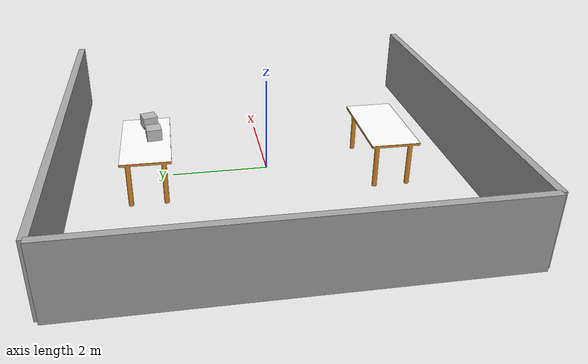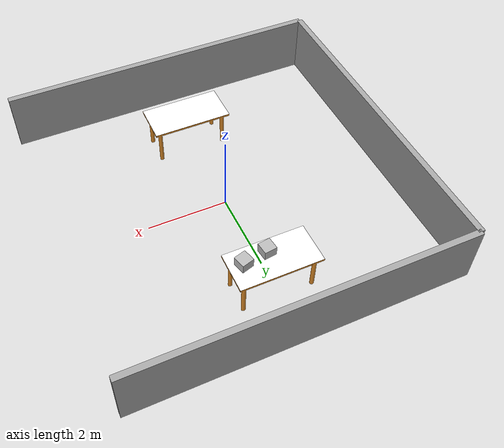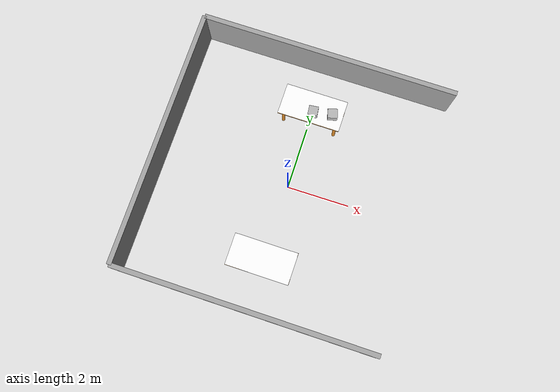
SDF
<sdf version="1.9">
 <world name="agentic_ai_demo_two_tables_u">
  <physics type="ode"><max_step_size>0.02</max_step_size><real_time_factor>1.0</real_time_factor></physics>
  <plugin name="gz::sim::systems::Physics" filename="libgz-sim-physics-system.so"/>
  <plugin name="gz::sim::systems::UserCommands" filename="libgz-sim-user-commands-system.so"/>
  <plugin name="gz::sim::systems::SceneBroadcaster" filename="libgz-sim-scene-broadcaster-system.so"/>
  <plugin name="gz::sim::systems::Sensors" filename="libgz-sim-sensors-system.so">
   <render_engine>ogre2</render_engine>
  </plugin>
  <plugin name="gz::sim::systems::Imu" filename="libgz-sim-imu-system.so"/>
  <plugin name="gz::sim::systems::NavSat" filename="libgz-sim-navsat-system.so"/>
  <plugin name="gz::sim::systems::Contact" filename="libgz-sim-contact-system.so"/>
  <scene><ambient>1 1 1</ambient><grid>false</grid></scene>
  <light name="sun" type="directional">
   <pose>0 0 10 0 0 0</pose>
   <diffuse>0.8 0.8 0.8 1</diffuse>
   <specular>0.8 0.8 0.8 1</specular>
   <direction>0 0 -1</direction>
  </light>
  <include>
   <uri>model://work_table</uri>
   <name>work_table_north</name>
   <pose>0 2.5 -0.18 0 0 3.1416</pose>
  </include>
  <include><uri>model://work_table</uri><name>work_table_south</name><pose>0 -2.5 -0.18 0 0 0</pose></include>
  <include>
   <uri>model://cube_logo_robonik</uri>
   <name>north_table_cube_logo</name>
   <pose>0.06 2.33 0.96 0 0 0.12</pose>
  </include>
  <include>
   <uri>model://cube_logotipo_robotnik</uri>
   <name>north_table_cube_logotipo</name>
   <pose>0.66 2.43 0.96 0 0 0.28</pose>
  </include>
  <model name="low_wall_west">
   <static>true</static>
   <pose>-4.1 0 0.75 0 0 0</pose>
   <link name="link">
    <collision name="collision"><geometry><box><size>0.15 8.2 1.5</size></box></geometry></collision>
    <visual name="visual">
     <geometry><box><size>0.15 8.2 1.5</size></box></geometry>
     <material><ambient>0.55 0.55 0.55 1</ambient><diffuse>0.65 0.65 0.65 1</diffuse></material>
    </visual>
   </link>
  </model>
  <model name="low_wall_north">
   <static>true</static>
   <pose>0 4.1 0.75 0 0 0</pose>
   <link name="link">
    <collision name="collision"><geometry><box><size>8.2 0.15 1.5</size></box></geometry></collision>
    <visual name="visual">
     <geometry><box><size>8.2 0.15 1.5</size></box></geometry>
     <material><ambient>0.55 0.55 0.55 1</ambient><diffuse>0.65 0.65 0.65 1</diffuse></material>
    </visual>
   </link>
  </model>
  <model name="low_wall_south">
   <static>true</static>
   <pose>0 -4.1 0.75 0 0 0</pose>
   <link name="link">
    <collision name="collision"><geometry><box><size>8.2 0.15 1.5</size></box></geometry></collision>
    <visual name="visual">
     <geometry><box><size>8.2 0.15 1.5</size></box></geometry>
     <material><ambient>0.55 0.55 0.55 1</ambient><diffuse>0.65 0.65 0.65 1</diffuse></material>
    </visual>
   </link>
  </model>
 </world>
</sdf>

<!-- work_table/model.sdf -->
<sdf version="1.9">
  <model name="work_table">
    <static>true</static>
    <link name="link">
      <visual name="visual">
        <pose>0 0 1.0 0 0 0</pose>
        <geometry>
          <mesh>
            <uri>model://floor/meshes/mesa.stl</uri>
          </mesh>
        </geometry>
        <material>
          <ambient>0.909804 0.572549 0.164706 1</ambient>
          <diffuse>0.909804 0.572549 0.164706 1</diffuse>
        </material>
      </visual>
      <visual name="wood_top_visual">
        <pose>0 0 1.051 0 0 0</pose>
        <geometry>
          <box>
            <size>2.0 1.0 0.003</size>
          </box>
        </geometry>
        <material>
          <diffuse>1 1 1 1</diffuse>
          <specular>0.08 0.08 0.08 1</specular>
          <pbr>
            <metal>
              <albedo_map>model://work_table/materials/textures/wood_table_001_diff_1k.jpg</albedo_map>
              <metalness>0.0</metalness>
              <roughness>0.65</roughness>
            </metal>
          </pbr>
        </material>
      </visual>
      <collision name="collision">
        <pose>0 0 1.0 0 0 0</pose>
        <geometry>
          <mesh>
            <uri>model://floor/meshes/mesa.stl</uri>
          </mesh>
        </geometry>
      </collision>
    </link>
  </model>
</sdf>

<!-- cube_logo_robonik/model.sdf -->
<sdf version="1.6">
  <model name="cube_logo_robonik">
    <pose>0 0 0.15 0 0 0</pose>
    <link name="link">
      <inertial>
        <mass>2</mass>
        <inertia>
          <ixx>0.041666667</ixx>
          <ixy>0</ixy>
          <ixz>0</ixz>
          <iyy>0.056666667</iyy>
          <iyz>0</iyz>
          <izz>0.068333333</izz>
        </inertia>
      </inertial>
      <collision name="collision">
        <geometry>
          <box>
            <size>0.3 0.3 0.3</size>
          </box>
        </geometry>
        <surface>
          <friction>
            <ode>
              <mu>1.0</mu>
              <mu2>1.0</mu2>
            </ode>
          </friction>
          <contact>
            <ode>
              <kp>10000000.0</kp>
              <kd>1.0</kd>
              <min_depth>0.001</min_depth>
              <max_vel>0.1</max_vel>
            </ode>
          </contact>
        </surface>
      </collision>
      <visual name="visual">
        <pose>0 0 0 0 0 0</pose>
        <geometry>
          <mesh>
            <uri>model://cube_logo_robonik/cube_logo_robotnik.dae</uri>
            <scale>0.15 0.15 0.1898734177</scale>
          </mesh>
        </geometry>
      </visual>
    </link>
  </model>
</sdf>

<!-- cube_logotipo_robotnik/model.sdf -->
<sdf version="1.6">
  <model name="cube_logotipo_robotnik">
    <pose>0 0 0.15 0 0 0</pose>
    <link name="link">
      <inertial>
        <mass>2</mass>
        <inertia>
          <ixx>0.041666667</ixx>
          <ixy>0</ixy>
          <ixz>0</ixz>
          <iyy>0.056666667</iyy>
          <iyz>0</iyz>
          <izz>0.068333333</izz>
        </inertia>
      </inertial>
      <collision name="collision">
        <geometry>
          <box>
            <size>0.3 0.3 0.3</size>
          </box>
        </geometry>
        <surface>
          <friction>
            <ode>
              <mu>1.0</mu>
              <mu2>1.0</mu2>
            </ode>
          </friction>
          <contact>
            <ode>
              <kp>10000000.0</kp>
              <kd>1.0</kd>
              <min_depth>0.001</min_depth>
              <max_vel>0.1</max_vel>
            </ode>
          </contact>
        </surface>
      </collision>
      <visual name="visual">
        <pose>0 0 0 0 0 0</pose>
        <geometry>
          <mesh>
            <uri>model://cube_logotipo_robotnik/caja_logotipo_rob.dae</uri>
            <scale>0.15 0.15 0.1898734177</scale>
          </mesh>
        </geometry>
      </visual>
    </link>
  </model>
</sdf>
